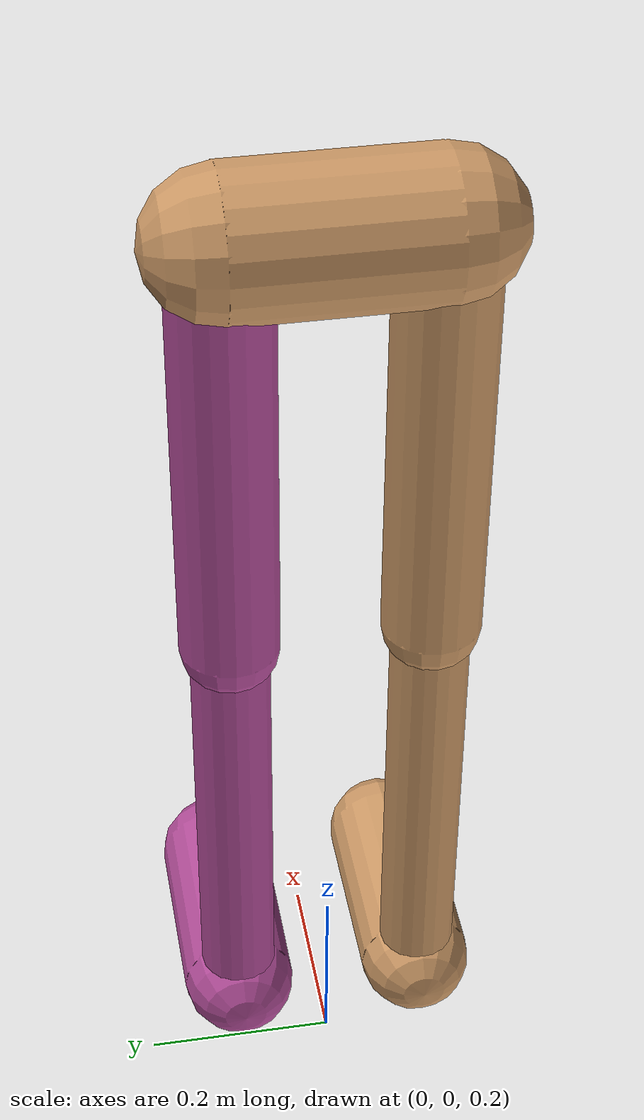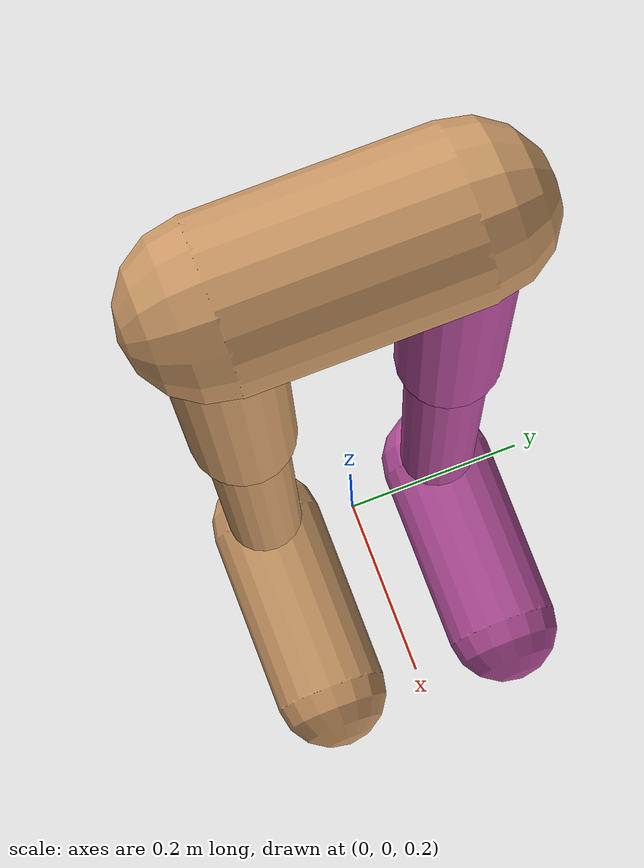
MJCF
<mujoco model="walker2d">
  <compiler angle="degree" coordinate="global" inertiafromgeom="true"/>
  <default>
    <joint armature="0.01" damping=".1" limited="true"/>
    <geom conaffinity="1" condim="3" contype="1" density="1000" friction="0.8 .1 .1" rgba="0.8 0.6 .4 1"/>
  </default>
  <option integrator="RK4" timestep="0.002"/>
  <worldbody>
    <!-- CHANGES: see hopper.xml -->
    <body name="pelvis">
      <joint armature="0" axis="1 0 0" damping="0" limited="false" name="ignorex" pos="0 0 0" stiffness="0" type="slide"/>
      <joint armature="0" axis="0 0 1" damping="0" limited="false" name="ignorez" pos="0 0 0" ref="1.25" stiffness="0" type="slide"/>
      <joint armature="0" axis="0 1 0" damping="0" limited="false" name="ignorey" pos="0 0 0" stiffness="0" type="hinge"/>
      <geom conaffinity="0" fromto="0 0.10 1.25 0 -0.10 1.25" name="pelvis_geom" size="0.071" type="capsule"/>
      <body name="thigh">
        <joint axis="0 -1 0" name="thigh_joint" pos="0 -0.10 1.25" range="-150 0" type="hinge"/>
        <geom fromto="0 -0.10 1.25 0 -0.10 0.8" name="thigh_geom" size="0.05" type="capsule"/>
        <body name="leg">
          <joint axis="0 -1 0" name="leg_joint" pos="0 -0.10 0.8" range="-150 0" type="hinge"/>
          <geom fromto="0 -0.10 0.8 0 -0.10 0.3" name="leg_geom" size="0.04" type="capsule"/>
          <body name="foot">
            <joint axis="0 -1 0" name="foot_joint" pos="0 -0.10 0.3" range="-45 45" type="hinge"/>
            <geom fromto="-0.0 -0.10 0.3 0.2 -0.10 0.3" name="foot_geom" size="0.06" type="capsule"/>
          </body>
        </body>
      </body>
      <!-- copied and then replace thigh->thigh_left, leg->leg_left, foot->foot_right -->
      <body name="thigh_left">
        <joint axis="0 -1 0" name="thigh_left_joint" pos="0 0.10 1.25" range="-150 0" type="hinge"/>
        <geom fromto="0 0.10 1.25 0 0.10 0.8" name="thigh_left_geom" rgba=".7 .3 .6 1" size="0.05" type="capsule"/>
        <body name="leg_left">
          <joint axis="0 -1 0" name="leg_left_joint" pos="0 0.10 0.8" range="-150 0" type="hinge"/>
          <geom fromto="0 0.10 0.8 0 0.10 0.3" name="leg_left_geom" rgba=".7 .3 .6 1" size="0.04" type="capsule"/>
          <body name="foot_left">
            <joint axis="0 -1 0" name="foot_left_joint" pos="0 0.10 0.3" range="-45 45" type="hinge"/>
            <geom fromto="-0.0 0.10 0.3 0.2 0.10 0.3" name="foot_left_geom" rgba=".7 .3 .6 1" size="0.06" type="capsule"/>
          </body>
        </body>
      </body>
    </body>
  </worldbody>
  <actuator>
    <motor ctrllimited="true" ctrlrange="-1.0 1.0" gear="100" joint="thigh_joint"/>
    <motor ctrllimited="true" ctrlrange="-1.0 1.0" gear="100" joint="leg_joint"/>
    <motor ctrllimited="true" ctrlrange="-1.0 1.0" gear="100" joint="foot_joint"/>
    <motor ctrllimited="true" ctrlrange="-1.0 1.0" gear="100" joint="thigh_left_joint"/>
    <motor ctrllimited="true" ctrlrange="-1.0 1.0" gear="100" joint="leg_left_joint"/>
    <motor ctrllimited="true" ctrlrange="-1.0 1.0" gear="100" joint="foot_left_joint"/>
  </actuator>
</mujoco>
